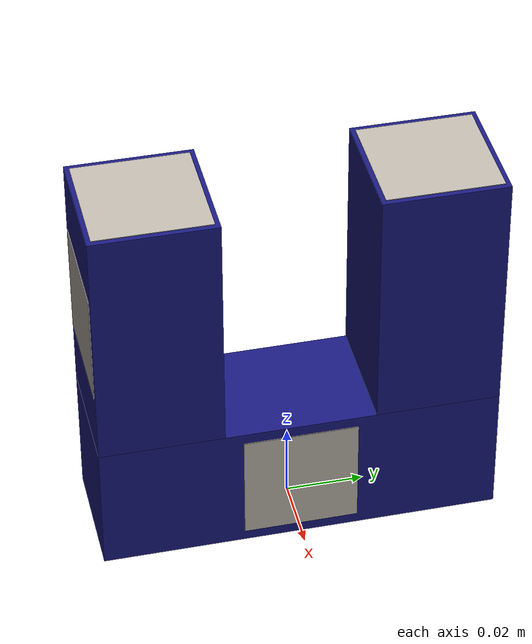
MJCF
<mujoco model="peg_v1_1">
  <compiler angle="radian" autolimits="true" inertiafromgeom="true" meshdir="../board_1" texturedir="tags" />
  <default>
    <default class="peg_v1_1">
      <default class="vis">
        <geom contype="0" conaffinity="0" group="2" density="0" material="peg_v1_1_mat" />
      </default>
      <default class="col">
        <geom contype="1" conaffinity="1" group="3" priority="0" friction="0.3 0.02 0.001" solref="0.002 1" solimp="0.995 0.995 0.0001" condim="6" rgba="0.1 0.1 0.5 0.5" />
      </default>
    </default>
  </default>
  <asset>
    <material name="peg_v1_1_mat" rgba="0.1 0.1 0.5 1.0" />
    <texture name="peg_1_2_tag_16_tex" type="2d" file="tag_16.png" />
    <material name="peg_1_2_tag_16_mat" texture="peg_1_2_tag_16_tex" rgba="1 1 1 1" specular="0" shininess="0" reflectance="0" emission="0" />
    <mesh name="peg_1_2_tag_16_mesh" vertex="-0.0146667 0.0146667 0 0.0146667 0.0146667 0 0.0146667 -0.0146667 0 -0.0146667 -0.0146667 0 -0.0146667 0.0146667 -0.0005 0.0146667 0.0146667 -0.0005 0.0146667 -0.0146667 -0.0005 -0.0146667 -0.0146667 -0.0005" texcoord="0 0 1 0 1 1 0 1 0 0 1 0 1 1 0 1" face="0 2 1 0 3 2 7 5 6 7 4 5 0 5 4 0 1 5 1 6 5 1 2 6 2 7 6 2 3 7 3 4 7 3 0 4" />
    <texture name="peg_1_2_tag_17_tex" type="2d" file="tag_17.png" />
    <material name="peg_1_2_tag_17_mat" texture="peg_1_2_tag_17_tex" rgba="1 1 1 1" specular="0" shininess="0" reflectance="0" emission="0" />
    <mesh name="peg_1_2_tag_17_mesh" vertex="-0.0146667 0.0146667 0 0.0146667 0.0146667 0 0.0146667 -0.0146667 0 -0.0146667 -0.0146667 0 -0.0146667 0.0146667 -0.0005 0.0146667 0.0146667 -0.0005 0.0146667 -0.0146667 -0.0005 -0.0146667 -0.0146667 -0.0005" texcoord="0 0 1 0 1 1 0 1 0 0 1 0 1 1 0 1" face="0 2 1 0 3 2 7 5 6 7 4 5 0 5 4 0 1 5 1 6 5 1 2 6 2 7 6 2 3 7 3 4 7 3 0 4" />
    <texture name="peg_1_2_tag_18_tex" type="2d" file="tag_18.png" />
    <material name="peg_1_2_tag_18_mat" texture="peg_1_2_tag_18_tex" rgba="1 1 1 1" specular="0" shininess="0" reflectance="0" emission="0" />
    <mesh name="peg_1_2_tag_18_mesh" vertex="-0.0146667 0.0146667 0 0.0146667 0.0146667 0 0.0146667 -0.0146667 0 -0.0146667 -0.0146667 0 -0.0146667 0.0146667 -0.0005 0.0146667 0.0146667 -0.0005 0.0146667 -0.0146667 -0.0005 -0.0146667 -0.0146667 -0.0005" texcoord="0 0 1 0 1 1 0 1 0 0 1 0 1 1 0 1" face="0 2 1 0 3 2 7 5 6 7 4 5 0 5 4 0 1 5 1 6 5 1 2 6 2 7 6 2 3 7 3 4 7 3 0 4" />
    <texture name="peg_1_2_tag_19_tex" type="2d" file="tag_19.png" />
    <material name="peg_1_2_tag_19_mat" texture="peg_1_2_tag_19_tex" rgba="1 1 1 1" specular="0" shininess="0" reflectance="0" emission="0" />
    <mesh name="peg_1_2_tag_19_mesh" vertex="-0.0146667 0.0146667 0 0.0146667 0.0146667 0 0.0146667 -0.0146667 0 -0.0146667 -0.0146667 0 -0.0146667 0.0146667 -0.0005 0.0146667 0.0146667 -0.0005 0.0146667 -0.0146667 -0.0005 -0.0146667 -0.0146667 -0.0005" texcoord="0 0 1 0 1 1 0 1 0 0 1 0 1 1 0 1" face="0 2 1 0 3 2 7 5 6 7 4 5 0 5 4 0 1 5 1 6 5 1 2 6 2 7 6 2 3 7 3 4 7 3 0 4" />
    <texture name="peg_1_2_tag_20_tex" type="2d" file="tag_20.png" />
    <material name="peg_1_2_tag_20_mat" texture="peg_1_2_tag_20_tex" rgba="1 1 1 1" specular="0" shininess="0" reflectance="0" emission="0" />
    <mesh name="peg_1_2_tag_20_mesh" vertex="-0.0146667 0.0146667 0 0.0146667 0.0146667 0 0.0146667 -0.0146667 0 -0.0146667 -0.0146667 0 -0.0146667 0.0146667 -0.0005 0.0146667 0.0146667 -0.0005 0.0146667 -0.0146667 -0.0005 -0.0146667 -0.0146667 -0.0005" texcoord="0 0 1 0 1 1 0 1 0 0 1 0 1 1 0 1" face="0 2 1 0 3 2 7 5 6 7 4 5 0 5 4 0 1 5 1 6 5 1 2 6 2 7 6 2 3 7 3 4 7 3 0 4" />
    <texture name="peg_1_2_tag_21_tex" type="2d" file="tag_21.png" />
    <material name="peg_1_2_tag_21_mat" texture="peg_1_2_tag_21_tex" rgba="1 1 1 1" specular="0" shininess="0" reflectance="0" emission="0" />
    <mesh name="peg_1_2_tag_21_mesh" vertex="-0.0146667 0.0146667 0 0.0146667 0.0146667 0 0.0146667 -0.0146667 0 -0.0146667 -0.0146667 0 -0.0146667 0.0146667 -0.0005 0.0146667 0.0146667 -0.0005 0.0146667 -0.0146667 -0.0005 -0.0146667 -0.0146667 -0.0005" texcoord="0 0 1 0 1 1 0 1 0 0 1 0 1 1 0 1" face="0 2 1 0 3 2 7 5 6 7 4 5 0 5 4 0 1 5 1 6 5 1 2 6 2 7 6 2 3 7 3 4 7 3 0 4" />
  </asset>
  <worldbody>
    <body name="peg_v1_1" pos="0 0 0" childclass="peg_v1_1">
      <freejoint name="peg_v1_1_joint" />
      <geom name="peg_v1_1_vis_base" type="box" class="vis" pos="0.000000 0.000000 0.017500" size="0.016000 0.051000 0.017500" />
      <geom name="peg_v1_1_vis_upright_neg" type="box" class="vis" pos="0.000000 -0.035125 0.067500" size="0.016000 0.015875 0.032500" />
      <geom name="peg_v1_1_vis_upright_pos" type="box" class="vis" pos="0.000000 0.035125 0.067500" size="0.016000 0.015875 0.032500" />
      <geom name="peg_v1_1_col_base" type="box" class="col" pos="0.000000 0.000000 0.017500" size="0.016000 0.051000 0.017500" />
      <geom name="peg_v1_1_col_upright_neg" type="box" class="col" pos="0.000000 -0.035125 0.067500" size="0.016000 0.015875 0.032500" />
      <geom name="peg_v1_1_col_upright_pos" type="box" class="col" pos="0.000000 0.035125 0.067500" size="0.016000 0.015875 0.032500" />
      <geom name="peg_1_2_tag_16" type="mesh" mesh="peg_1_2_tag_16_mesh" material="peg_1_2_tag_16_mat" pos="0 -0.035125 0.1002" quat="1 0 0 0" contype="0" conaffinity="0" group="2" density="0" />
      <geom name="peg_1_2_tag_17" type="mesh" mesh="peg_1_2_tag_17_mesh" material="peg_1_2_tag_17_mat" pos="0 0.035125 0.1002" quat="1 0 0 0" contype="0" conaffinity="0" group="2" density="0" />
      <geom name="peg_1_2_tag_18" type="mesh" mesh="peg_1_2_tag_18_mesh" material="peg_1_2_tag_18_mat" pos="0 -0.0512 0.0675" quat="0.707107 0.707107 0 0" contype="0" conaffinity="0" group="2" density="0" />
      <geom name="peg_1_2_tag_19" type="mesh" mesh="peg_1_2_tag_19_mesh" material="peg_1_2_tag_19_mat" pos="0 0.0512 0.0675" quat="0 0 0.707107 0.707107" contype="0" conaffinity="0" group="2" density="0" />
      <geom name="peg_1_2_tag_20" type="mesh" mesh="peg_1_2_tag_20_mesh" material="peg_1_2_tag_20_mat" pos="0.0162 0 0.0175" quat="0.5 0.5 0.5 0.5" contype="0" conaffinity="0" group="2" density="0" />
      <geom name="peg_1_2_tag_21" type="mesh" mesh="peg_1_2_tag_21_mesh" material="peg_1_2_tag_21_mat" pos="-0.0162 0 0.0175" quat="0.5 0.5 -0.5 -0.5" contype="0" conaffinity="0" group="2" density="0" />
    </body>
  </worldbody>
</mujoco>
